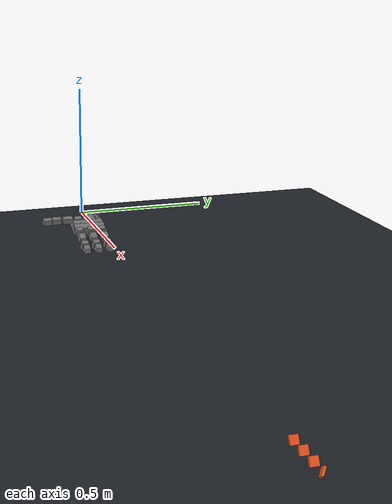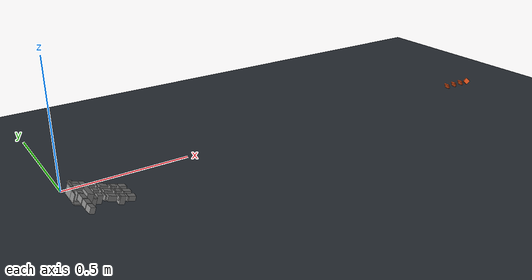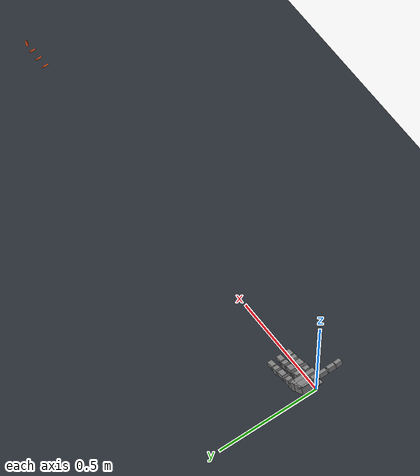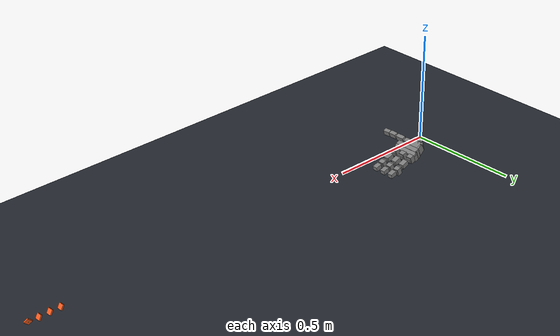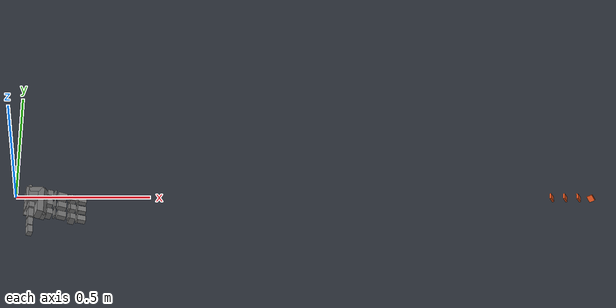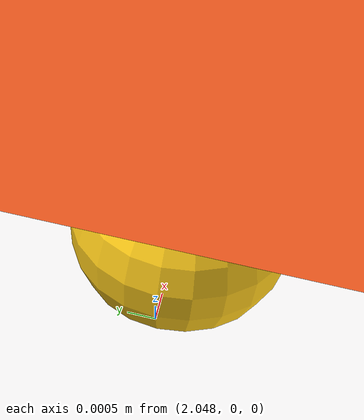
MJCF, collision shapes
<mujoco model="leap_hand_kinematic">
  <include file="leap_rh_mjx.xml"/>

  <statistic center="0.12 0 0.03" extent="0.30" meansize="0.01"/>

  <visual>
    <headlight diffuse="0.8 0.8 0.8" ambient="0.25 0.25 0.25" specular="0.3 0.3 0.3"/>
    <global offwidth="800" offheight="600"/>
  </visual>

  <asset>
    <material name="kinematic_floor_material" rgba="0.16 0.18 0.21 1"/>
    <material name="b1_contact_target_material" rgba="0.95 0.35 0.12 0.85"/>
  </asset>

  <contact>
    <pair geom1="if_tip" geom2="b1_index_target_geom"/>
    <pair geom1="mf_tip" geom2="b1_middle_target_geom"/>
    <pair geom1="rf_tip" geom2="b1_ring_target_geom"/>
    <pair geom1="th_tip" geom2="b1_thumb_target_geom"/>
  </contact>

  <worldbody>
    <light name="kinematic_key" pos="-0.2 -0.3 0.6" dir="0.3 0.3 -1" directional="true"/>
    <camera name="evidence" pos="-0.22 0.39 0.27" xyaxes="-0.87 -0.49 0 0.22 -0.39 0.89"/>
    <geom name="kinematic_floor" pos="0 0 -0.25" size="0 0 0.01" type="plane"
      material="kinematic_floor_material" contype="2" conaffinity="2"/>
    <body name="b1_index_target_body" mocap="true" pos="2.00 0 0" quat="0 1 0 -0.175">
      <geom name="b1_index_target_geom" type="box" size="0.012 0.012 0.003"
        pos="0.002037207 0 -0.002202224" quat="0.36464057 0 0.93114835 0"
        material="b1_contact_target_material" contype="2" conaffinity="1"/>
      <site name="b1_index_target_site" size="0.002" rgba="1 0.8 0.1 1"/>
    </body>
    <body name="b1_middle_target_body" mocap="true" pos="2.05 0 0" quat="0 1 0 -0.175">
      <geom name="b1_middle_target_geom" type="box" size="0.012 0.012 0.003"
        pos="0.002037207 0 -0.002202224" quat="0.36464057 0 0.93114835 0"
        material="b1_contact_target_material" contype="2" conaffinity="1"/>
      <site name="b1_middle_target_site" size="0.002" rgba="1 0.8 0.1 1"/>
    </body>
    <body name="b1_ring_target_body" mocap="true" pos="2.10 0 0" quat="0 1 0 -0.175">
      <geom name="b1_ring_target_geom" type="box" size="0.012 0.012 0.003"
        pos="0.002037207 0 -0.002202224" quat="0.36464057 0 0.93114835 0"
        material="b1_contact_target_material" contype="2" conaffinity="1"/>
      <site name="b1_ring_target_site" size="0.002" rgba="1 0.8 0.1 1"/>
    </body>
    <body name="b1_thumb_target_body" mocap="true" pos="2.15 0 0" quat="0 1 0 -0.175">
      <geom name="b1_thumb_target_geom" type="box" size="0.012 0.012 0.003"
        pos="-0.001463596 0.002573290 -0.000485866"
        quat="0.64731935 -0.66255032 -0.37683515 0"
        material="b1_contact_target_material" contype="2" conaffinity="1"/>
      <site name="b1_thumb_target_site" size="0.002" rgba="1 0.8 0.1 1"/>
    </body>
  </worldbody>

  <keyframe>
    <key name="home"
      qpos="
      0.8 0 0.8 0.8
      0.8 0 0.8 0.8
      0.8 0 0.8 0.8
      0.8 0.8 0.8 0"
      ctrl="
      0.8 0 0.8 0.8
      0.8 0 0.8 0.8
      0.8 0 0.8 0.8
      0.8 0.8 0.8 0"/>
  </keyframe>
</mujoco>

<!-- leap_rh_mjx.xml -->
<mujoco model="leap_rh">
  <!-- AutoAdapter modification: local mesh paths and deployed 0.002 s timestep. -->
  <compiler angle="radian" autolimits="true"/>

  <option timestep="0.002" integrator="Euler" iterations="5" ls_iterations="8">
    <flag eulerdamp="disable"/>
  </option>

  <custom>
    <numeric data="30" name="max_contact_points"/>
    <numeric data="12" name="max_geom_pairs"/>
  </custom>

  <asset>
    <material name="black" rgba="0.2 0.2 0.2 1"/>
    <material name="gray" rgba="0.5 0.5 0.5 1"/>
    <mesh name="leap_mount" file="assets/leap_mount.obj"/>

    <mesh name="palm" file="assets/palm_right.obj"/>
    <mesh name="base" file="assets/base.obj"/>
    <mesh name="proximal" file="assets/proximal.obj"/>
    <mesh name="medial" file="assets/medial.obj"/>
    <mesh name="distal" file="assets/distal.obj"/>
    <mesh name="tip" file="assets/tip.obj"/>
    <mesh name="thumb_base" file="assets/thumb_base.obj"/>
    <mesh name="thumb_proximal" file="assets/thumb_proximal.obj"/>
    <mesh name="thumb_distal" file="assets/thumb_distal.obj"/>
    <mesh name="thumb_tip" file="assets/thumb_tip.obj"/>
  </asset>

  <default>
    <default class="leap_rh">
      <geom group="3" friction="0.2" solref="0.02 1.5" solimp="0.9 0.99 0.001"/>
      <default class="visual">
        <geom group="2" type="mesh" contype="0" conaffinity="0" density="0" material="black"/>
      </default>
      <default class="tip">
        <geom size="0.01 0.012 0.016" pos="-0.0012969 -0.0335524 0.0145207" quat="0.703552 0.709596 -0.0292107 -0.0252203" type="box" friction="0.7 0.05 0.0002" rgba=".5 .5 .5 .3"/>
      </default>
      <default class="thumb_tip">
        <geom size="0.01 0.012 0.016" pos="-0.00127744 -0.0455619 -0.0144774" quat="0.708101 0.705072 -0.0294902 -0.024426" type="box" friction="0.7 0.05 0.0002" rgba=".5 .5 .5 .3"/>
      </default>

      <position kp="3.0" inheritrange="1"/>
      <!-- armature = rotor inertia * gear ratio^2 = 1.7 * 1e-8 * 288*288 = 0.00149376 -->
      <!-- max torque = 0.2196 = 600/1000*0.366 -->
      <!-- frictionloss = rough guess, small ish value -->
      <joint axis="0 0 -1" damping="0.2" armature="0.00149376" actuatorfrcrange="-0.2196 0.2196" frictionloss="0.02"/>

      <default class="mcp">
        <joint range="-0.314 2.23"/>
      </default>
      <default class="rot">
        <joint range="-1.047 1.047"/>
      </default>
      <default class="pip">
        <joint range="-0.506 1.885"/>
      </default>
      <default class="dip">
        <joint range="-0.366 2.042"/>
      </default>
      <default class="thumb_cmc">
        <joint range="-0.349 2.094"/>
      </default>
      <default class="thumb_axl">
        <joint range="-0.349 2.094"/>
      </default>
      <default class="thumb_mcp">
        <joint range="-0.47 2.443"/>
      </default>
      <default class="thumb_ipl">
        <joint range="-1.34 1.88"/>
      </default>

    </default>
  </default>

  <contact>
    <!-- filter the palm from all other finger bodies except the tips -->
    <exclude body1="palm" body2="if_bs"/>
    <exclude body1="palm" body2="mf_bs"/>
    <exclude body1="palm" body2="rf_bs"/>
    <exclude body1="palm" body2="th_mp"/>

    <exclude body1="palm" body2="if_px"/>
    <exclude body1="palm" body2="mf_px"/>
    <exclude body1="palm" body2="rf_px"/>
    <exclude body1="palm" body2="th_bs"/>

    <exclude body1="palm" body2="if_md"/>
    <exclude body1="palm" body2="mf_md"/>
    <exclude body1="palm" body2="rf_md"/>
    <exclude body1="palm" body2="th_px"/>

    <!-- filter the mount from all finger bodies except the tips -->
    <exclude body1="leap_mount" body2="if_bs"/>
    <exclude body1="leap_mount" body2="mf_bs"/>
    <exclude body1="leap_mount" body2="rf_bs"/>
    <exclude body1="leap_mount" body2="th_mp"/>

    <exclude body1="leap_mount" body2="if_px"/>
    <exclude body1="leap_mount" body2="mf_px"/>
    <exclude body1="leap_mount" body2="rf_px"/>
    <exclude body1="leap_mount" body2="th_bs"/>

    <exclude body1="leap_mount" body2="if_md"/>
    <exclude body1="leap_mount" body2="mf_md"/>
    <exclude body1="leap_mount" body2="rf_md"/>
    <exclude body1="leap_mount" body2="th_px"/>

    <!-- none of the base fingertip geoms can touch each other -->
    <exclude body1="if_bs" body2="mf_bs"/>
    <exclude body1="if_bs" body2="rf_bs"/>
    <exclude body1="mf_bs" body2="rf_bs"/>

    <exclude body1="th_mp" body2="if_bs"/>
    <exclude body1="th_mp" body2="mf_bs"/>
    <exclude body1="th_mp" body2="rf_bs"/>
  </contact>

  <worldbody>
    <light name="spotlight" mode="targetbodycom" target="palm" pos="3 0 4"/>
    <body name="leap_mount" pos="0 0 0" quat="1 0 0 0" childclass="leap_rh">
      <geom name="leap_mount_visual" pos="0 0 0" quat="1 0 0 0" class="visual" mesh="leap_mount"/>
      <geom name="leap_mount_collision_0" size="0.002 0.025 0.005" pos="0.0405 0.02 0.009"
        quat="0.57346234 0 0.81923192 0" type="box"/>
      <geom name="leap_mount_collision_1" size="0.005 0.005 0.005" pos="0.05 0.053 0.002"
        quat="0.4987168 0.64994038 -0.34910175 0.45495826" type="box"/>
      <site name="grasp_site" pos="0.11 0.0 0.03" group="4"/>
      <body name="palm" pos="0.124 -0.0305 -0.06045" quat="0 1 0 -0.175">
        <inertial pos="-0.049542 -0.042914 -0.010227" quat="0.565586 0.427629 -0.574956 0.408254" mass="0.237"
          diaginertia="0.000407345 0.000304759 0.000180736"/>
        <geom name="palm_visual" pos="-0.02 0.02575 -0.0347" quat="1 0 0 0" class="visual" mesh="palm"/>
        <geom name="palm_collision_1" size="0.011 0.013 0.017" pos="-0.009 0.008 -0.011" type="box"/>
        <geom name="palm_collision_2" size="0.011 0.013 0.017" pos="-0.009 -0.037 -0.011" type="box"/>
        <geom name="palm_collision_3" size="0.011 0.013 0.017" pos="-0.009 -0.082 -0.011" type="box"/>
        <geom name="palm_collision_4" size="0.029 0.01 0.023" pos="-0.066 -0.078 -0.0115" quat="0.989016 0 0 -0.147806" type="box"/>
        <geom name="palm_collision_5" size="0.01 0.06 0.015" pos="-0.03 -0.035 -0.003" type="box"/>
        <geom name="palm_collision_6" size="0.005 0.06 0.01" pos="-0.032 -0.035 -0.024" quat="0.923956 0 0.382499 0" type="box"/>
        <geom name="palm_collision_7" size="0.012 0.058 0.023" pos="-0.048 -0.033 -0.0115" type="box"/>
        <geom name="palm_collision_8" size="0.022 0.026 0.023" pos="-0.078 -0.053 -0.0115" type="box"/>
        <geom name="palm_collision_9" size="0.002 0.018 0.017" pos="-0.098 -0.009 -0.006" type="box"/>
        <geom name="palm_collision_10" size="0.022 0.028 0.002" pos="-0.078 -0.003 0.01" type="box"/>
        <body name="if_bs" pos="-0.007 0.023 -0.0187" quat="0.5 0.5 0.5 -0.5">
          <inertial pos="-0.022516 0.033882 0.016359" quat="0.388092 0.677951 -0.247713 0.573067" mass="0.044"
            diaginertia="1.74972e-05 1.61504e-05 7.21342e-06"/>
          <joint name="if_mcp" class="mcp"/>
          <geom name="if_bs_visual" pos="0.0084 0.0077 0.01465" quat="1 0 0 0" class="visual" mesh="base"/>
          <geom name="if_bs_collision_1" size="0.01 0.003 0.017" pos="0 0.018 0.0147" type="box"/>
          <body name="if_px" pos="-0.0122 0.0381 0.0145" quat="0.500003 -0.5 -0.499997 0.5">
            <inertial pos="0.0075 -0.0002 -0.011" quat="0 0.707107 0 0.707107" mass="0.032"
              diaginertia="4.8853e-06 4.3733e-06 3.0933e-06"/>
            <joint name="if_rot" class="rot"/>
            <geom name="if_px_visual" pos="0.0096 0.0002 0.0007" quat="0.500003 -0.5 -0.5 -0.499997" class="visual"
              mesh="proximal"/>
            <geom name="if_px_collision" size="0.017 0.013 0.011" pos="0.0075 -0.0002 -0.011" type="box"/>

            <body name="if_md" pos="0.015 0.0143 -0.013" quat="0.500003 0.5 -0.5 0.499997">
              <inertial pos="0.0054215 -0.029148 0.015" quat="0.687228 0.687228 0.166487 0.166487" mass="0.037"
                diaginertia="8.28004e-06 8.1598e-06 5.39516e-06"/>
              <joint name="if_pip" class="pip"/>
              <geom name="if_md_visual" pos="0.0211 -0.0084 0.0097" quat="2.67949e-08 -1 0 0" class="visual"
                mesh="medial"/>
              <geom name="if_md_collision_1" size="0.008 0.003 0.013" pos="0 -0.02 0.015" type="box"/>
              <geom name="if_md_collision_5" size="0.017 0.011 0.013" pos="0.0075 -0.035 0.015" type="box"/>
              <body name="if_ds" pos="0 -0.0361 0.0002">
                <inertial pos="-0.0008794 -0.027019 0.014594" quat="0.702905 0.710643 -0.0212937 -0.0214203"
                  mass="0.016" diaginertia="3.71863e-06 3.02396e-06 1.6518e-06"/>
                <joint name="if_dip" class="dip"/>
                <geom name="if_ds_visual" pos="0.0132 -0.0061 0.0144" quat="2.67949e-08 1 0 0" class="visual"
                  mesh="distal"/>
                <geom name="if_ds_collision_1" size="0.01 0.003 0.015" pos="0 -0.017 0.015" type="box"/>
                <geom name="if_tip" class="tip"/>
                <geom type="mesh" mesh="tip" class="visual" material="gray"/>
                <site name="if_tip" pos="0 -0.05 0.015" group="4"/>
              </body>
            </body>
          </body>
        </body>
        <body name="mf_bs" pos="-0.0071 -0.0224 -0.0187" quat="0.500003 0.5 0.5 -0.499997">
          <inertial pos="-0.022516 0.033882 0.016359" quat="0.388092 0.677951 -0.247713 0.573067" mass="0.044"
            diaginertia="1.74972e-05 1.61504e-05 7.21342e-06"/>
          <joint name="mf_mcp" class="mcp"/>
          <geom name="mf_bs_visual" pos="0.0084 0.0077 0.01465" quat="1 0 0 0" class="visual" mesh="base"/>
          <geom name="mf_bs_collision_1" size="0.01 0.003 0.017" pos="0 0.018 0.0147" type="box"/>
          <body name="mf_px" pos="-0.0122 0.0381 0.0145" quat="0.500003 -0.5 -0.499997 0.5">
            <inertial pos="0.0075 -0.0002 -0.011" quat="0 0.707107 0 0.707107" mass="0.032"
              diaginertia="4.8853e-06 4.3733e-06 3.0933e-06"/>
            <joint name="mf_rot" class="rot"/>
            <geom name="mf_px_visual" pos="0.0096 0.0003 0.0007" quat="0.500003 -0.5 -0.5 -0.499997" class="visual"
              mesh="proximal"/>
            <geom name="mf_px_collision" size="0.017 0.013 0.011" pos="0.0075 -0.0002 -0.011" type="box"/>
            <body name="mf_md" pos="0.015 0.0143 -0.013" quat="0.500003 0.5 -0.5 0.499997">
              <inertial pos="0.0054215 -0.029148 0.015" quat="0.687228 0.687228 0.166487 0.166487" mass="0.037"
                diaginertia="8.28004e-06 8.1598e-06 5.39516e-06"/>
              <joint name="mf_pip" class="pip"/>
              <geom name="mf_md_visual" pos="0.0211 -0.0084 0.0097" quat="1.32679e-06 -1 0 0" class="visual"
                mesh="medial"/>
              <geom name="mf_md_collision_1" size="0.008 0.003 0.013" pos="0 -0.02 0.015" type="box"/>
              <geom name="mf_md_collision_5" size="0.017 0.011 0.013" pos="0.0075 -0.035 0.015" type="box"/>
              <body name="mf_ds" pos="0 -0.0361 0.0002">
                <inertial pos="-0.0008794 -0.027019 0.014594" quat="0.702905 0.710643 -0.0212937 -0.0214203"
                  mass="0.016" diaginertia="3.71863e-06 3.02396e-06 1.6518e-06"/>
                <joint name="mf_dip" class="dip"/>
                <geom name="mf_ds_visual" pos="0.0132 -0.0061 0.0145" quat="1.32679e-06 1 0 0" class="visual"
                  mesh="distal"/>
                <geom name="mf_ds_collision_1" size="0.01 0.003 0.015" pos="0 -0.017 0.015" type="box"/>
                <geom name="mf_tip" class="tip"/>
                <geom type="mesh" mesh="tip" class="visual" material="gray"/>
                <site name="mf_tip" pos="0 -0.05 0.015" group="4"/>
              </body>
            </body>
          </body>
        </body>
        <body name="rf_bs" pos="-0.00709 -0.0678 -0.0187" quat="0.500003 0.5 0.5 -0.499997">
          <inertial pos="-0.022516 0.033882 0.016359" quat="0.388092 0.677951 -0.247713 0.573067" mass="0.044"
            diaginertia="1.74972e-05 1.61504e-05 7.21342e-06"/>
          <joint name="rf_mcp" class="mcp"/>
          <geom name="rf_bs_visual" pos="0.0084 0.0077 0.01465" quat="1 0 0 0" class="visual" mesh="base"/>
          <geom name="rf_bs_collision_1" size="0.01 0.003 0.017" pos="0 0.018 0.0147" type="box"/>
          <body name="rf_px" pos="-0.0122 0.0381 0.0145" quat="0.500003 -0.5 -0.499997 0.5">
            <inertial pos="0.0075 -0.0002 -0.011" quat="0 0.707107 0 0.707107" mass="0.032"
              diaginertia="4.8853e-06 4.3733e-06 3.0933e-06"/>
            <joint name="rf_rot" class="rot"/>
            <geom name="rf_px_visual" pos="0.0096 0.0003 0.0007" quat="0.500003 -0.5 -0.5 -0.499997" class="visual"
              mesh="proximal"/>
            <geom name="rf_px_collision" size="0.017 0.013 0.011" pos="0.0075 -0.0002 -0.011" type="box"/>
            <body name="rf_md" pos="0.015 0.0143 -0.013" quat="0.500003 0.5 -0.5 0.499997">
              <inertial pos="0.0054215 -0.029148 0.015" quat="0.687228 0.687228 0.166487 0.166487" mass="0.037"
                diaginertia="8.28004e-06 8.1598e-06 5.39516e-06"/>
              <joint name="rf_pip" class="pip"/>
              <geom name="rf_md_visual" pos="0.0211 -0.0084 0.0097" quat="0 -1 0 0" class="visual" mesh="medial"/>
              <geom name="rf_md_collision_1" size="0.008 0.003 0.013" pos="0 -0.02 0.015" type="box"/>
              <geom name="rf_md_collision_5" size="0.017 0.011 0.013" pos="0.0075 -0.035 0.015" type="box"/>
              <body name="rf_ds" pos="0 -0.03609 0.0002">
                <inertial pos="-0.0008794 -0.027019 0.014594" quat="0.702905 0.710643 -0.0212937 -0.0214203"
                  mass="0.016" diaginertia="3.71863e-06 3.02396e-06 1.6518e-06"/>
                <joint name="rf_dip" class="dip"/>
                <geom name="rf_ds_visual" pos="0.0132 -0.0061 0.0145" quat="0 1 0 0" class="visual" mesh="distal"/>
                <geom name="rf_ds_collision_1" size="0.01 0.003 0.015" pos="0 -0.017 0.015" type="box"/>
                <geom name="rf_tip" class="tip"/>
                <geom type="mesh" mesh="tip" class="visual" material="gray"/>
                <site name="rf_tip" pos="0 -0.05 0.015" group="4"/>
              </body>
            </body>
          </body>
        </body>
        <body name="th_mp" pos="-0.0693 -0.0012 -0.0216" quat="0.707109 0 0.707105 0">
          <inertial pos="0.0075 -0.0002 -0.011" quat="0 0.707107 0 0.707107" mass="0.032"
            diaginertia="4.8853e-06 4.3733e-06 3.0933e-06"/>
          <joint name="th_cmc" class="thumb_cmc"/>
          <geom name="th_mp_visual" pos="-0.0053 0.0003 0.00078" quat="0.500003 -0.5 -0.5 -0.499997" class="visual"
            mesh="proximal"/>
          <geom name="th_mp_collision" size="0.017 0.013 0.011" pos="-0.0075 -0.0002 -0.011" type="box"/>
          <body name="th_bs" pos="0 0.0143 -0.013" quat="0.500003 0.5 -0.5 0.499997">
            <inertial pos="0 0 -0.0070806" quat="0.707107 0.707107 0 0" mass="0.003"
              diaginertia="6.1932e-07 5.351e-07 2.1516e-07"/>
            <joint name="th_axl" class="thumb_axl"/>
            <geom name="th_bs_collision_1" pos="0.01196 0 -0.0158" quat="0.707109 0.707105 0 0" class="visual" mesh="thumb_base"/>
            <body name="th_px" pos="0 0.0145 -0.017" quat="0.707109 -0.707105 0 0">
              <inertial pos="-0.0020593 0.015912 -0.013733" quat="0.698518 0.697382 -0.104933 0.121324" mass="0.038"
                diaginertia="9.87104e-06 9.32653e-06 4.36203e-06"/>
              <joint name="th_mcp" class="thumb_mcp"/>
              <geom name="th_px_visual" pos="0.0439 0.0579 -0.0086" quat="1 0 0 0" class="visual" mesh="thumb_proximal"/>
              <geom name="th_px_collision_1" size="0.01 0.02 0.012" pos="0 0.0105 -0.014" type="box"/>
              <body name="th_ds" pos="0 0.0466 0.0002" quat="1.32679e-06 0 0 1">
                <inertial pos="0.00096191 -0.024203 -0.014419" quat="0.35287 0.311272 -0.632839 0.614904" mass="0.049"
                  diaginertia="2.08591e-05 2.0402e-05 4.71335e-06"/>
                <joint name="th_ipl" class="thumb_ipl"/>
                <geom name="th_ds_visual" pos="0.0625 0.0784 0.0489" quat="1 0 0 0" class="visual" mesh="thumb_distal"/>
                <geom name="th_ds_collision_1" size="0.01 0.018 0.012" pos="0 -0.0085 -0.015" type="box"/>
                <geom name="th_tip" class="thumb_tip"/>
                <site name="th_tip" pos="0 -0.06 -0.015" group="4"/>
                <geom type="mesh" mesh="thumb_tip" class="visual" material="gray"/>
              </body>
            </body>
          </body>
        </body>
      </body>
    </body>
  </worldbody>

  <actuator>
    <position name="if_mcp_act" joint="if_mcp" class="mcp"/>
    <position name="if_rot_act" joint="if_rot" class="rot"/>
    <position name="if_pip_act" joint="if_pip" class="pip"/>
    <position name="if_dip_act" joint="if_dip" class="dip"/>
    <position name="mf_mcp_act" joint="mf_mcp" class="mcp"/>
    <position name="mf_rot_act" joint="mf_rot" class="rot"/>
    <position name="mf_pip_act" joint="mf_pip" class="pip"/>
    <position name="mf_dip_act" joint="mf_dip" class="dip"/>
    <position name="rf_mcp_act" joint="rf_mcp" class="mcp"/>
    <position name="rf_rot_act" joint="rf_rot" class="rot"/>
    <position name="rf_pip_act" joint="rf_pip" class="pip"/>
    <position name="rf_dip_act" joint="rf_dip" class="dip"/>
    <position name="th_cmc_act" joint="th_cmc" class="thumb_cmc"/>
    <position name="th_axl_act" joint="th_axl" class="thumb_axl"/>
    <position name="th_mcp_act" joint="th_mcp" class="thumb_mcp"/>
    <position name="th_ipl_act" joint="th_ipl" class="thumb_ipl"/>
  </actuator>
</mujoco>
